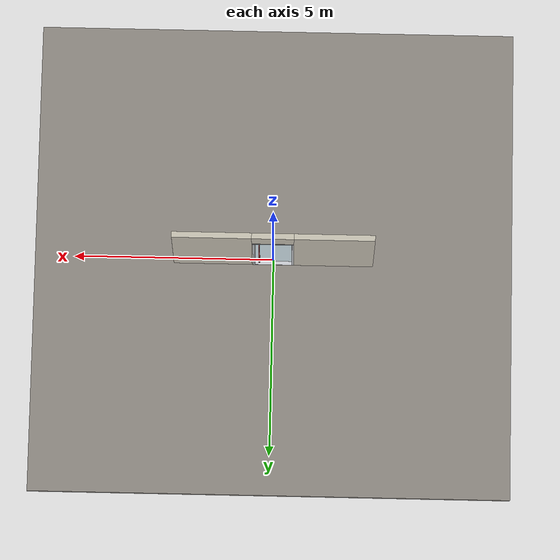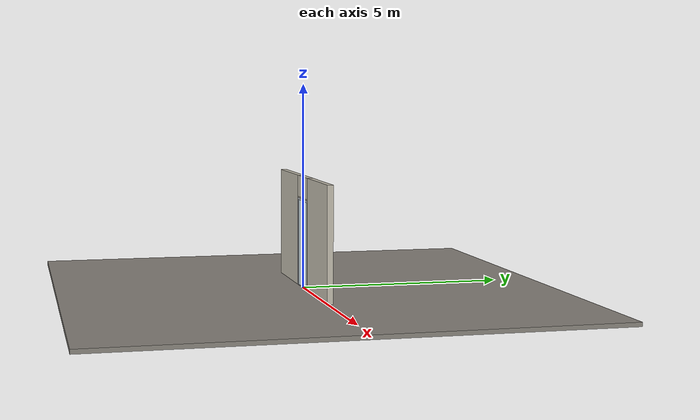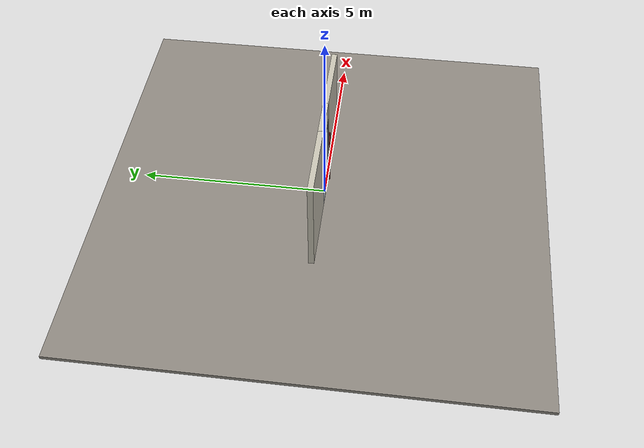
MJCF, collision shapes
<?xml version="1.0" ?>
<mujoco model="db0178_swing_single_minimal">
  <compiler angle="radian" meshdir="../../hardware" texturedir="../../textures" autolimits="true" inertiafromgeom="false"/>
  <option timestep="0.002" integrator="implicitfast" cone="elliptic" impratio="10" noslip_iterations="3">
    <flag multiccd="enable"/>
  </option>
  <size memory="16M"/>
  <default>
    <geom condim="4" solref="0.005 1" solimp="0.95 0.99 0.001"/>
    <joint solreflimit="0.005 1" solimplimit="0.95 0.99 0.001"/>
    <tendon solreflimit="0.005 1"/>
    <equality solref="0.002 1"/>
  </default>
  <visual>
    <headlight ambient="0.4 0.4 0.4" diffuse="0.7 0.7 0.7" specular="0.2 0.2 0.2"/>
    <quality shadowsize="4096"/>
    <map znear="0.01" zfar="60"/>
  </visual>
  <asset>
    <mesh name="pull_897e207f65" file="pull_897e207f65.obj"/>
    <material name="mat_floor" rgba="0.55 0.53 0.5 1" specular="0.2" shininess="0.15" reflectance="0"/>
    <material name="mat_wall" rgba="0.78 0.76 0.7 1" specular="0.2" shininess="0.1" reflectance="0"/>
    <material name="mat_leaf" rgba="0.85 0.92 0.95 0.25" specular="0.2" shininess="0.95" reflectance="0.1"/>
    <material name="mat_glass_leaf" rgba="0.85 0.92 0.95 0.25" specular="0.2" shininess="0.95" reflectance="0.1"/>
    <material name="mat_patch" rgba="0.75 0.76 0.77 1" specular="0.8" shininess="0.65" reflectance="0.4"/>
    <material name="mat_hinge" rgba="0.65 0.66 0.68 1" specular="0.74" shininess="0.5" reflectance="0.36"/>
    <material name="mat_op_stainless" rgba="0.75 0.76 0.77 1" specular="0.8" shininess="0.65" reflectance="0.4"/>
    <material name="mat_frame" rgba="0.8 0.81 0.83 1" specular="0.8" shininess="0.6" reflectance="0.4"/>
    <material name="mat_threshold" rgba="0.8 0.81 0.83 1" specular="0.8" shininess="0.6" reflectance="0.4"/>
    <material name="mat_closer" rgba="0.75 0.76 0.77 1" specular="0.8" shininess="0.65" reflectance="0.4"/>
    <material name="mat_exit_sign" rgba="0.85 0.1 0.1 1" specular="0.2" shininess="0.6" reflectance="0"/>
    <material name="mat_sign_bracket" rgba="0.8 0.81 0.83 1" specular="0.8" shininess="0.6" reflectance="0.4"/>
    <material name="mat_sign" rgba="0.75 0.76 0.77 1" specular="0.8" shininess="0.65" reflectance="0.4"/>
    <material name="mat_stop" rgba="0.9 0.9 0.92 1" specular="0.8" shininess="0.9" reflectance="0.4"/>
    <texture name="skybox" type="skybox" builtin="gradient" rgb1="0.6 0.7 0.85" rgb2="0.9 0.92 0.95" width="256" height="256"/>
  </asset>
  <worldbody>
    <light name="sun" pos="1.5 -2.5 4" dir="-0.3 0.5 -0.8" directional="true" diffuse="0.8 0.8 0.8" specular="0.3 0.3 0.3" castshadow="true"/>
    <light name="fill" pos="-1.5 2.5 3" dir="0.3 -0.5 -0.7" directional="true" diffuse="0.35 0.35 0.4" castshadow="false"/>
    <camera name="robot_view" pos="0 -2.594812 1.812087" xyaxes="1 0 0 0 0.26963 0.962964" fovy="52"/>
    <camera name="far_view" pos="0 2.680813 1.812087" xyaxes="-1 0 0 0 -0.26963 0.962964" fovy="52"/>
    <camera name="iso" pos="2.004737 -2.172762 2.234138" xyaxes="0.741536 0.670913 0 -0.242917 0.268487 0.932151" fovy="46"/>
    <camera name="detail_handle" pos="0.53 -0.8875 1.296" xyaxes="0.97561 0.219512 0 -0.070934 0.315262 0.94635" fovy="38"/>
    <geom name="floor" type="box" size="6 6 0.05" pos="0 0 -0.05" material="mat_floor" group="0" contype="1" conaffinity="1" friction="0.8 0.005 0.0001" density="2400"/>
    <geom name="wall_left" type="box" size="0.9965 0.0725 1.3735" pos="-1.5035 0.043 1.3735" material="mat_wall" group="0" contype="1" conaffinity="1" friction="0.6 0.005 0.0001" density="800"/>
    <geom name="wall_right" type="box" size="0.9815 0.0725 1.3735" pos="1.5185 0.043 1.3735" material="mat_wall" group="0" contype="1" conaffinity="1" friction="0.6 0.005 0.0001" density="800"/>
    <geom name="wall_header" type="box" size="0.522 0.0725 0.2625" pos="0.015 0.043 2.4845" material="mat_wall" group="0" contype="1" conaffinity="1" friction="0.6 0.005 0.0001" density="800"/>
    <geom name="jamb_hinge" type="box" size="0.0225 0.0725 1.0735" pos="-0.4845 0.043 1.0735" material="mat_frame" group="0" contype="1" conaffinity="1" friction="0.6 0.005 0.0001" density="300"/>
    <geom name="jamb_strike" type="box" size="0.0225 0.0725 1.0735" pos="0.4845 0.043 1.0735" material="mat_frame" group="0" contype="1" conaffinity="1" friction="0.6 0.005 0.0001" density="300"/>
    <geom name="stud_strike" type="box" size="0.015 0.0725 1.0735" pos="0.522 0.043 1.0735" material="mat_wall" group="0" contype="1" conaffinity="1" friction="0.6 0.005 0.0001" density="500"/>
    <geom name="jamb_head" type="box" size="0.522 0.0725 0.0225" pos="0.015 0.043 2.1695" material="mat_frame" group="0" contype="1" conaffinity="1" friction="0.6 0.005 0.0001" density="300"/>
    <geom name="head_stud" type="box" size="0.522 0.0725 0.015" pos="0.015 0.043 2.207" material="mat_wall" group="0" contype="1" conaffinity="1" friction="0.6 0.005 0.0001" density="500"/>
    <geom name="threshold" type="box" size="0.507 0.0725 0.0065" pos="0 0.043 0.0065" material="mat_threshold" group="0" contype="1" conaffinity="1" friction="0.5 0.005 0.0001" density="2700"/>
    <site name="approach_point" pos="0 -1.5 0" quat="1 0 0 0" size="0.05" rgba="0.2 0.9 0.2 0.5" group="4"/>
    <site name="goal_point" pos="0 1.5 0" quat="1 0 0 0" size="0.05" rgba="0.2 0.9 0.2 0.5" group="4"/>
    <site name="door_plane_center" pos="0 0 1.0735" quat="1 0 0 0" size="0.02" rgba="0.2 0.9 0.2 0.5" group="4"/>
    <body name="leaf" pos="-0.462 0 0">
      <inertial pos="0.531897 0 1.066928" mass="102.078242" quat="0.503264 0.503264 0.496715 -0.496715" diaginertia="7.872992329 36.411985632 43.953439432"/>
      <joint name="leaf_hinge" type="hinge" axis="0 0 -1" pos="0.019 -0.0325 0" limited="true" range="0 1.658063" solreflimit="0.02 1" damping="8.268966" frictionloss="1.394385" stiffness="36.070876" springref="-1.586876" armature="0.02"/>
      <geom name="leaf_glass" type="box" size="0.457 0.0225 1.063" pos="0.46 0 1.08" material="mat_glass_leaf" group="0" contype="1" conaffinity="1" friction="0.4 0.005 0.0001" density="1"/>
      <geom name="leaf_pull_n" type="mesh" mesh="pull_897e207f65" pos="0.812 -0.0225 1.016" quat="0.707107 0.707107 0 0" material="mat_op_stainless" group="1" contype="0" conaffinity="0" density="3000"/>
      <geom name="leaf_pull_col_n" type="capsule" size="0.016 0.88" pos="0.812 -0.0875 1.016" material="mat_op_stainless" group="3" contype="1" conaffinity="1" rgba="0.8 0.3 0.3 0.25" friction="0.7 0.01 0.0001" density="3000"/>
      <geom name="leaf_pull_p" type="mesh" mesh="pull_897e207f65" pos="0.812 0.0225 1.016" quat="-0.707107 0.707107 0 0" material="mat_op_stainless" group="1" contype="0" conaffinity="0" density="3000"/>
      <geom name="leaf_pull_col_p" type="capsule" size="0.016 0.88" pos="0.812 0.0875 1.016" material="mat_op_stainless" group="3" contype="1" conaffinity="1" rgba="0.8 0.3 0.3 0.25" friction="0.7 0.01 0.0001" density="3000"/>
      <site name="leaf_pull_grip_n" pos="0.812 -0.0875 1.016" quat="1 0 0 0" size="0.012" rgba="0.2 0.9 0.2 0.5" group="4"/>
      <site name="leaf_pull_grip_p" pos="0.812 0.0875 1.016" quat="1 0 0 0" size="0.012" rgba="0.2 0.9 0.2 0.5" group="4"/>
      <site name="leaf_edge_mid" pos="0.917 0 1.063" quat="1 0 0 0" size="0.02" rgba="0.2 0.9 0.2 0.5" group="4"/>
    </body>
  </worldbody>
  <sensor>
    <jointpos name="leaf_hinge_pos" joint="leaf_hinge"/>
    <jointvel name="leaf_hinge_vel" joint="leaf_hinge"/>
  </sensor>
</mujoco>
